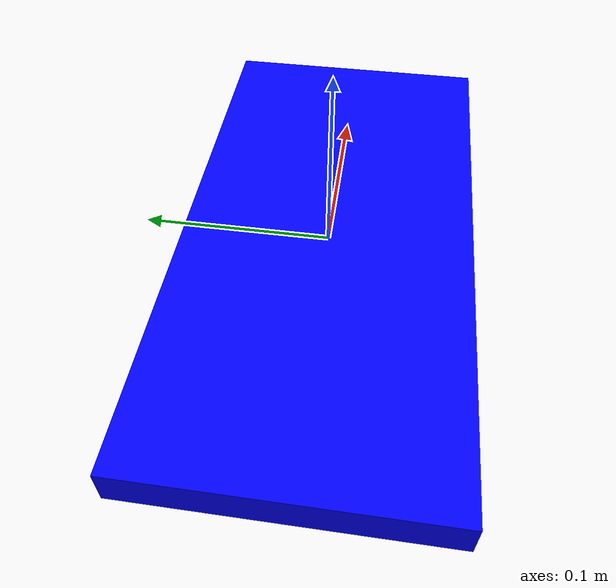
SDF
<?xml version="1.0" ?>
<sdf version="1.6">
  <model name="blue_plate">
    <static>true</static>
    <link name="link">
      <collision name="body_collision">
        <geometry>
          <box>
            <size>0.3 0.15 0.02</size>
          </box>
        </geometry>
      </collision>
      <visual name="body_visual">
        <pose>0 0 0 0 0 0</pose>
        <geometry>
          <box>
            <size>0.3 0.15 0.02</size>
          </box>
        </geometry>
        <material> <!-- stone material -->
          <ambient>0 0 1 1</ambient>
          <diffuse>0 0 1 1</diffuse>
          <specular>0 0 0 0</specular>
          <emissive>0 0 0 1</emissive>
        </material> <!-- End wheel material -->
      </visual>
    </link>
  </model>
</sdf>
